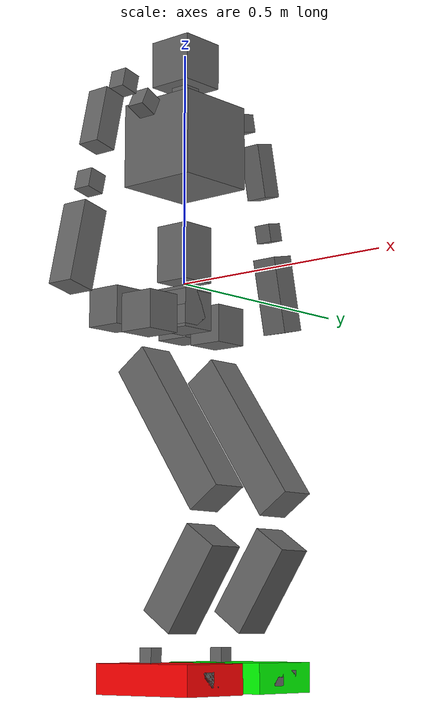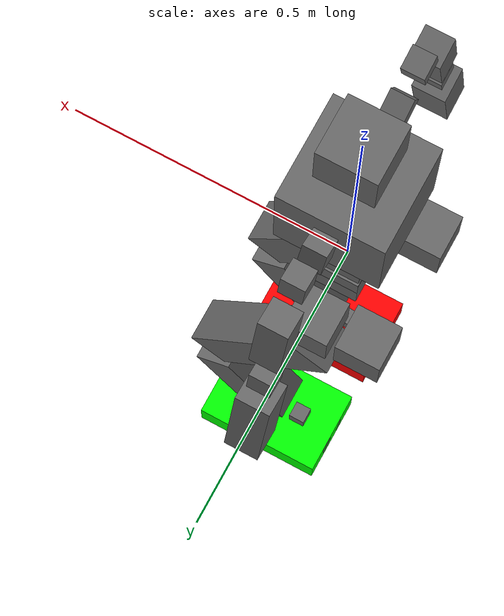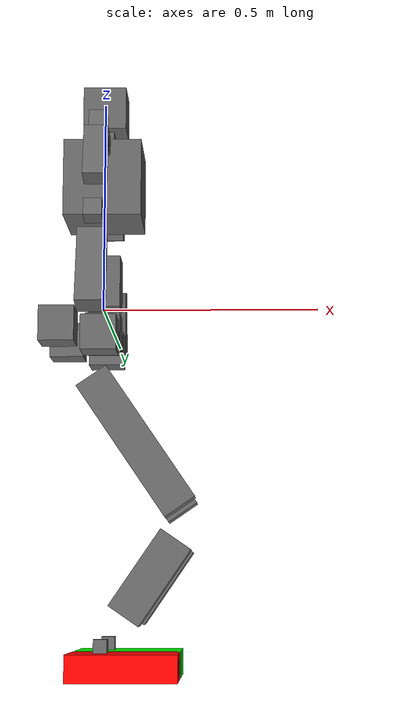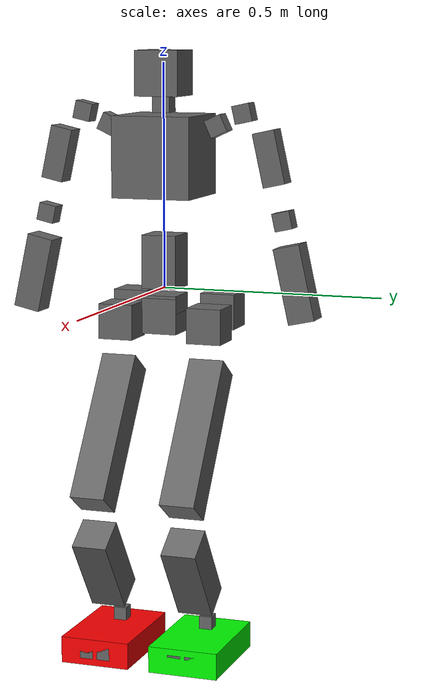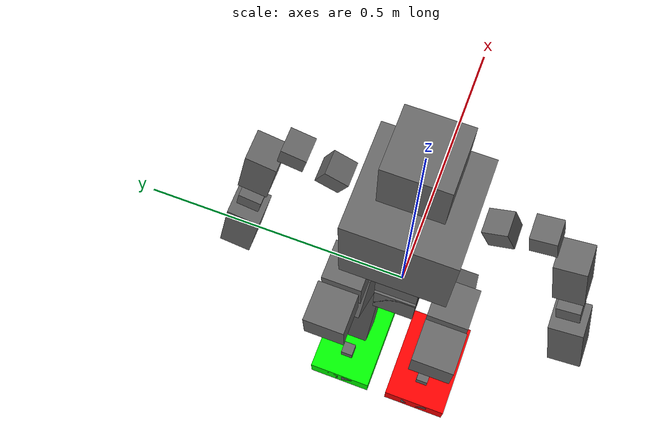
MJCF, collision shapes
<mujoco model="GR1T1">
    <compiler angle="radian" autolimits="true"/>
    <default>
    <motor ctrlrange="-1 1" ctrllimited="true"/>
        <default class="body">
            <geom type="box" condim="1" friction="1.0 0.05 0.05" solimp=".9 .99 .003" solref=".015 1"/>
            <joint type="hinge" armature=".007" limited="true" solimplimit="0 .99 .01"/>
            <site size="10" group="3"/>
        </default>
  </default>
  <asset>
    <material name="LightGrey" specular="0.9" shininess="0.9" rgba="0.4 0.4 0.4 1.0"/>
    <material name="Purple" specular="0.9" shininess="0.9" rgba="0.58 0.42 0.58 1.0"/>
    <material name="Blue" specular="0.9" shininess="0.9" rgba="0. 0.49 0.651 0."/>
    <material name="Green" specular="0.9" shininess="0.9" rgba="0. 0.82 0.471 1.0"/>
    <material name="Black" specular="0.9" shininess="0.9" rgba="0.1 0.1 0.1 1.0"/>
    <texture type="skybox" builtin="gradient" rgb1=".3 .5 .7" rgb2="0 0 0" width="32" height="512"/>
    <texture name="body" type="cube" builtin="flat" mark="cross" width="128" height="128" rgb1="0.8 0.6 0.4" rgb2="0.8 0.6 0.4" markrgb="1 1 1" random="0.01"/>
    <material name="body" texture="body" texuniform="true" rgba="0.8 0.6 .4 1"/>
    <texture name="grid" type="2d" builtin="checker" width="512" height="512" rgb1=".1 .2 .3" rgb2=".2 .3 .4"/>
    <material name="grid" texture="grid" texrepeat="1 1" texuniform="true" reflectance="0.02"/>

    <!-- Define mesh model files -->
    <mesh name="base" file="./meshes/base.STL"/>
    <mesh name="frame" file="./meshes/frame.obj" scale="0.001 0.001 0.001"/>
    <mesh name="frame_new" file="./meshes/frame_new.obj" scale="0.001 0.001 0.001"/>
    <mesh name="spear" file="./meshes/spear.obj" scale="0.03 0.0033 0.03"/>
    <mesh name="l_thigh_roll" file="./meshes/l_thigh_roll.STL"/>
    <mesh name="l_thigh_yaw" file="./meshes/l_thigh_yaw.STL"/>
    <mesh name="l_thigh_pitch" file="./meshes/l_thigh_pitch.STL"/>
    <mesh name="l_shank_pitch" file="./meshes/l_shank_pitch.STL"/>
    <mesh name="l_foot_pitch" file="./meshes/l_foot_pitch.STL"/>
    <mesh name="l_foot_roll" file="./meshes/l_foot_roll.STL"/>
    <mesh name="r_thigh_roll" file="./meshes/r_thigh_roll.STL"/>
    <mesh name="r_thigh_yaw" file="./meshes/r_thigh_yaw.STL"/>
    <mesh name="r_thigh_pitch" file="./meshes/r_thigh_pitch.STL"/>
    <mesh name="r_shank_pitch" file="./meshes/r_shank_pitch.STL"/>
    <mesh name="r_foot_pitch" file="./meshes/r_foot_pitch.STL"/>
    <mesh name="r_foot_roll" file="./meshes/r_foot_roll.STL"/>
    <mesh name="torso_waist_yaw" file="./meshes/waist_yaw.STL"/>
    <mesh name="torso_waist_pitch" file="./meshes/waist_pitch.STL"/>
    <mesh name="torso_waist_roll" file="./meshes/torso.STL"/>
    <mesh name="head_yaw" file="./meshes/head_yaw.STL"/>
    <mesh name="head_roll" file="./meshes/head_roll.STL"/>
    <mesh name="head_pitch" file="./meshes/head_pitch.STL"/>
    <mesh name="l_upper_arm_pitch" file="./meshes/l_upper_arm_pitch.STL"/>
    <mesh name="l_upper_arm_roll" file="./meshes/l_upper_arm_roll.STL"/>
    <mesh name="l_upper_arm_yaw" file="./meshes/l_upper_arm_yaw.STL"/>
    <mesh name="l_lower_arm_pitch" file="./meshes/l_lower_arm_pitch.STL"/>
    <mesh name="l_hand_yaw" file="./meshes/l_hand_yaw.STL"/>
    <mesh name="l_hand_roll" file="./meshes/l_hand_roll.STL"/>
    <mesh name="l_hand_pitch" file="./meshes/l_hand_pitch.STL"/>
    <mesh name="r_upper_arm_pitch" file="./meshes/r_upper_arm_pitch.STL"/>
    <mesh name="r_upper_arm_roll" file="./meshes/r_upper_arm_roll.STL"/>
    <mesh name="r_upper_arm_yaw" file="./meshes/r_upper_arm_yaw.STL"/>
    <mesh name="r_lower_arm_pitch" file="./meshes/r_lower_arm_pitch.STL"/>
    <mesh name="r_hand_yaw" file="./meshes/r_hand_yaw.STL"/>
    <mesh name="r_hand_roll" file="./meshes/r_hand_roll.STL"/>
    <mesh name="r_hand_pitch" file="./meshes/r_hand_pitch.STL"/>
    <!-- End of mesh model files -->
  </asset>
  <worldbody>
        <!-- Camera for observing hands-->
    <!-- Base -->
    <body name="base">
        <inertial pos="-0.0508888 0.000109183 -0.0455794" quat="0.706855 0.707166 0.0123661 -0.0109307" mass="6.45117" diaginertia="0.0149302 0.0127972 0.00640923"/>
        <!-- Base mesh -->
        <freejoint/>
        <!-- Torso center of mass -->

        <body name="whole_body">
            <geom type="mesh" contype="0" conaffinity="0" group="1" density="0" material="Purple" mesh="base"/>
            <geom size="0.04 0.04 0.04" pos="0 0 -0.06" type="box" material="LightGrey"/>

            <!-- Torso -->
            <!-- Waist yaw -->
            <body name="torso_waist_yaw" pos="0 0 0.0065">
                <site name="waist" pos="0 0 0" size="0.06 0.06 0.06" rgba="1 0 0 0" type="sphere" group="1"/>
                <inertial pos="-0.010388 -0.00169636 0.0224709" quat="8.03475e-05 0.752953 -6.91813e-06 0.658075" mass="0.37886" diaginertia="0.000387148 0.000354992 0.000193448"/>
                <joint name="torso_waist_yaw" pos="0 0 0" damping="50.4164" stiffness="453.15" axis="-1.221e-05 -6.8349e-05 1" range="-1.05 1.05"/>

                <geom type="mesh" contype="0" conaffinity="0" group="1" density="0" material="LightGrey" mesh="torso_waist_yaw"/>
                <geom size="0.04 0.04 0.04" pos="0 0 -0.06" quat="0.707388 0.706825 0 0" type="box" material="LightGrey"/>

                <!-- Waist pitch -->
                <body name="torso_waist_pitch" pos="0 0 0.055">
                    <inertial pos="0.00229173 -0.00229364 0.0425378" quat="0.998452 -0.0194486 0.0162447 0.0495079" mass="4.40328" diaginertia="0.00487449 0.00487146 0.00355351"/>
                    <joint name="torso_waist_pitch" pos="0 0 0" damping="50.4164" stiffness="453.15" axis="0 1 -6.8349e-05" range="-0.52 1.22"/>

                    <geom type="mesh" contype="0" conaffinity="0" group="1" density="0" material="LightGrey" mesh="torso_waist_pitch"/>
                    <geom size="0.04 0.04 0.06" type="box" material="LightGrey"/>

                    <!-- Waist roll -->
                    <body name="torso_waist_roll" pos="0 0 0.085">
                        <site name="chest" pos="0 0 0.2" size="0.06 0.06 0.06" rgba="1 0 0 0" type="sphere" group="1"/>
                        <inertial pos="-0.00982804 -1.2954e-05 0.160653" quat="0.999997 1.84368e-05 -0.00260593 -4.00255e-05" mass="7.34393" diaginertia="0.0305266 0.0217567 0.0136783"/>
                        <joint name="torso_waist_roll" pos="0 0 0" damping="50.4164" stiffness="453.15" axis="1 0 1.221e-05" range="-0.7 0.7"/>

                        <geom pos="0 0 0.15" type="mesh" contype="0" conaffinity="0" group="1" density="0" material="LightGrey" mesh="torso_waist_roll"/>
                        <geom size="0.09 0.09 0.09" pos="0 0 0.15" type="box" material="LightGrey"/>

                        <!-- Head yaw -->
                        <body name="head_yaw" pos="0.001 -0.00022551 0.295">
                            <site name="neck" pos="0 0 0" size="0.03 0.03 0.03" rgba="1 0 0 0" type="sphere" group="1"/>
                            <inertial pos="0.000255273 -1.43143e-05 0.0571737" quat="0.698659 0.111628 0.112302 0.697713" mass="0.168425" diaginertia="0.00013241 0.000126266 6.86988e-05"/>
                            <joint name="head_yaw" pos="0 0 0" axis="-1.221e-05 -6.8349e-05 1" range="-1.5707963267948966 1.5707963267948966" damping="7" armature="1.0" frictionloss="0.2"/>

                            <geom type="mesh" contype="0" conaffinity="0" group="1" density="0" material="LightGrey" mesh="head_yaw"/>
                            <geom size="0.02 0.02 0.02" pos="0 0 -0.03" type="box" material="LightGrey"/>

                            <!-- Head roll -->
                            <body name="head_roll" pos="0 0 0">
                                <inertial pos="-0.000539717 0.00299723 -0.00194711" quat="0.498775 0.509039 0.50481 0.487104" mass="0.0189574" diaginertia="5.66154e-06 3.71917e-06 3.07146e-06"/>
                                <joint name="head_roll" pos="0 0 0" axis="1 0 1.221e-05" range="-0.2617993877991494 0.2617993877991494" damping="7" armature="1.0" frictionloss="0.2"/>

                                <geom type="mesh" contype="0" conaffinity="0" group="1" density="0" material="LightGrey" mesh="head_roll"/>
                                <geom size="0.02 0.02 0.02" pos="0 0 -0.1" type="box" material="LightGrey"/>

                                <!-- Head pitch -->
                                <body name="head_pitch" pos="0 5.373E-05 0.036">
                                    <site name="head" pos="0 0 0" size="0.06 0.06 0.06" rgba="1 0 0 0" type="sphere" group="1"/>
                                    <inertial pos="0.0179937 0.000157203 -0.0107884" quat="-0.00317787 0.890883 0.0047882 0.454197" mass="0.315067" diaginertia="0.00129389 0.00105273 0.000852366"/>
                                    <joint name="head_pitch" pos="0 0 0" axis="0 1 6.8349e-05" range="-0.34906585 0.34906585"/>

                                    <geom type="mesh" contype="0" conaffinity="0" group="1" density="0" mass="0.1" material="Black" mesh="head_pitch"/>
                                    <geom size="0.05 0.05 0.05" type="box" material="LightGrey"/>
                                    <camera mode="fixed"
                                            name="robotview"
                                            pos="0.10742 0.0125 0.09"
                                            quat="0.5 0.5 -0.5 -0.5"
                                            resolution="1280 720" focal="909.83630 909.12280" sensorsize="1303.9403 752.74194"
                                    />

                                </body>
                                <!-- End of Head pitch -->
                            </body>
                            <!-- End of Head roll -->
                        </body>
                        <!-- End of Head yaw -->

                        <!-- Right arm -->
                        <body name="right_arm_mount" pos="0 -0.12664 0.21725" quat="0.976303 -0.216409 0 0">
                        <site name="right_center" pos="0 0 0" size="0.01" rgba="1 0.3 0.3 1" group="2"/>
                        <!-- r upper arm pitch -->
                        <body name="r_upper_arm_pitch">
                            <site name="r_shoulder_site" pos="0 0 0" size="0.03 0.03 0.03" rgba="1 0 0 0" type="sphere" group="1"/>
                            <inertial pos="0.00515735 -0.0587916 0.000122944" quat="0.999675 -0.0254775 -0.000125407 -0.000494276" mass="0.777391" diaginertia="0.00054641 0.000340601 0.00031934"/>
                            <joint name="r_shoulder_pitch" pos="0 0 0" axis="0 1 0" range="-2.6179938779914944 1.0471975511965976" damping="7.7" armature="3.0" frictionloss="0.2"/>

                            <geom type="mesh" contype="0" conaffinity="0" group="1" density="0" material="LightGrey" mesh="r_upper_arm_pitch"/>
                            <geom size="0.02 0.02 0.02" type="box" material="LightGrey"/>

                            <!-- r upper arm roll -->
                            <body name="r_upper_arm_roll" pos="0 -0.067 0" quat="0.9940525 0.1089021 0 0">
                                <inertial pos="0.0260059 -0.0238264 -0.0272109" quat="0.906733 -0.298529 0.228698 0.190821" mass="0.0840989" diaginertia="9.66585e-05 8.99068e-05 2.54689e-05"/>
                                <joint name="r_shoulder_roll" pos="0 0 0" axis="-1 0 1.221e-05" range="-0.2094395 2.399827721492203" damping="7.7" armature="3.0" frictionloss="0.2"/>

                                <geom type="mesh" contype="0" conaffinity="0" group="1" density="0" material="LightGrey" mesh="r_upper_arm_roll"/>
                                <geom size="0.02 0.02 0.02" type="box" material="LightGrey"/>

                                <!-- r upper arm yaw -->
                                <body name="r_upper_arm_yaw" pos="0 -0.039996 -0.057473">
                                    <site name="r_collar_site" pos="0 0 0" size="0.03 0.03 0.03" rgba="1 0 0 0" type="sphere" group="1"/>
                                    <inertial pos="0.00017083 -0.00124148 -0.100981" quat="0.712176 -0.02561 0.0250075 0.701088" mass="0.78993" diaginertia="0.000481112 0.000420147 0.000315576"/>
                                    <joint name="r_shoulder_yaw" pos="0 0 0" axis="1.221e-05 6.8349e-05 1" range="-1.5707963267948966 1.5707963267948966" damping="7.7" armature="1.0" frictionloss="0.2"/>

                                    <geom type="mesh" contype="0" conaffinity="0" group="1" density="0" material="LightGrey" mesh="r_upper_arm_yaw"/>
                                    <geom size="0.025 0.025 0.06" pos="0 0 -0.05" type="box" material="LightGrey"/>

                                    <!-- r lower arm pitch -->
                                    <body name="r_lower_arm_pitch" pos="0 1.28859e-05 -0.18853">
                                        <site name="r_elbow_site" pos="0 0 0" size="0.03 0.03 0.03" rgba="1 0 0 0" type="sphere" group="1"/>
                                        <inertial pos="2.54538e-07 -0.0196908 -0.0210929" quat="0.675237 0.209883 -0.209892 0.67524" mass="0.0553958" diaginertia="2.92256e-05 2.63267e-05 1.3293e-05"/>
                                        <joint name="r_elbow_pitch" pos="0 0 0" axis="0 1 -6.835e-05" range="-1.5707963267948966 0.0" damping="7.7" armature="3.0" frictionloss="0.2"/>

                                        <geom type="mesh" contype="0" conaffinity="0" group="1" density="0" material="LightGrey" mesh="r_lower_arm_pitch"/>
                                        <geom size="0.02 0.02 0.02" type="box" material="LightGrey"/>

                                        <!-- r hand yaw -->
                                        <body name="r_hand_yaw" pos="0 0 -0.0405">
                                            <inertial pos="0.000158044 -0.000478822 -0.0559415" quat="0.999772 0.019131 0.00724385 -0.00608553" mass="0.606076" diaginertia="0.000748132 0.000708413 0.000280748"/>
                                            <joint name="r_wrist_yaw" pos="0 0 0" axis="1.221e-05 6.835e-05 1" range="-1.5707963267948966 1.5707963267948966" damping="7.7" armature="1.0" frictionloss="0.2"/>

                                            <geom type="mesh" contype="0" conaffinity="0" group="1" density="0" material="LightGrey" mesh="r_hand_yaw"/>
                                            <geom size="0.03 0.03 0.085" pos="0 0 -0.1" type="box" material="LightGrey"/>

                                            <!-- r hand roll -->
                                            <body name="r_hand_roll" pos="0 1.3775e-05 -0.20153">
                                                <inertial pos="1.5545e-08 0.00044846 4.1938e-08" quat="0 0.707105 0 0.707108" mass="0.0054473" diaginertia="3.6036e-07 3.5527e-07 7.344e-08"/>
                                                <joint name="r_wrist_roll" pos="0 0 0" axis="1 0 1.221e-05" range="-0.3665191429188092 0.3665191429188092" damping="7.7" armature="1.0" frictionloss="0.2"/>

                                                <geom type="mesh" contype="0" conaffinity="0" group="1" density="0" material="LightGrey" mesh="r_hand_roll"/>

                                                <!-- r hand pitch -->
                                                <body name="r_hand_pitch" quat="0.5 0.5 -0.5 -0.5">
                                                    <site name="r_wrist_site" pos="0 0 0" size="0.03 0.03 0.03" rgba="1 0 0 0" type="sphere" group="1"/>
                                                    <inertial pos="0.0060733 0.0018907 -0.084578" quat="0.647336 -0.27161 -0.257721 0.6639" mass="0.53221" diaginertia="0.000319947 0.000196296 0.000182477"/>
                                                    <joint name="r_wrist_pitch" pos="0 0 0" axis="1 0 0" range="-0.3665191429188092 0.3665191429188092" damping="7.7" armature="1.0" frictionloss="0.2"/>

                                                    <!-- right eef -->
                                                    <body name="right_eef" pos="0 0 0" quat="0.7071068 -0.7071068 0 0">
                                                        <body name="right_mount" quat="0 0 1 0"/>
                                                        <body name="right_hand_eef" pos="0 0 0"/>
                                                    </body>
                                                    <!-- End of right eef -->

                                                    <body name="right_palm" pos="-0.01 -0.12 -0.02">
                                                    </body>
                                                </body>
                                                <!-- End of r hand pitch -->
                                            </body>
                                            <!-- End of r hand roll -->
                                        </body>
                                        <!-- End of r hand yaw -->
                                    </body>
                                    <!-- End of r lower arm pitch -->
                                </body>
                                <!-- End of r upper arm yaw -->
                            </body>
                            <!-- End of r upper arm roll -->
                        </body>
                        <!-- End of r upper arm pitch -->
                        </body>
                        <!-- End of right arm mount -->
                        <!-- End of Right arm -->

                        <!-- Left arm -->
                        <body name="left_arm_mount" pos="0 0.12661 0.21727" quat="0.976289 0.216473 0 0">
                        <site name="left_center" pos="0 0 0" size="0.01" rgba="1 0.3 0.3 1" group="2"/>
                        <!-- l upper arm pitch -->
                        <body name="l_upper_arm_pitch">
                            <site name="l_shoulder_site" pos="0 0 0" size="0.03 0.03 0.03" rgba="1 0 0 0" type="sphere" group="1"/>
                            <inertial pos="0.00515733 0.0588337 0.000122944" quat="0.999793 0.0203364 -0.000117253 0.0011083" mass="0.777394" diaginertia="0.000546411 0.000340581 0.000319359"/>
                            <joint name="l_shoulder_pitch" pos="0 0 0" axis="0 -1 0" range="-1.0471975511965976 2.6179938779914944" damping="7.7" armature="3.0" frictionloss="0.2"/>
                            <geom type="mesh" contype="0" conaffinity="0" group="1" density="0" material="LightGrey" mesh="l_upper_arm_pitch"/>
                            <geom size="0.02 0.02 0.02" type="box" material="LightGrey"/>

                            <!-- l upper arm roll -->
                            <body name="l_upper_arm_roll" pos="0 0.067 0" quat="0.9940525 -0.1089021 0 0">
                                <inertial pos="0.0260055 0.0238305 -0.0272078" quat="0.906707 0.298574 0.228734 -0.190834" mass="0.084111" diaginertia="9.66711e-05 8.99184e-05 2.54726e-05"/>
                                <joint name="l_shoulder_roll" pos="0 0 0" axis="-1 0 1.221e-05" range="-2.399827721492203 0.2094395" damping="7.7" armature="3.0" frictionloss="0.2"/>
                                <geom type="mesh" contype="0" conaffinity="0" group="1" density="0" material="LightGrey" mesh="l_upper_arm_roll"/>
                                <geom size="0.02 0.02 0.02" type="box" material="LightGrey"/>

                                <!-- l upper arm yaw -->
                                <body name="l_upper_arm_yaw" pos="0 0.040004 -0.057502">
                                    <site name="l_collar_site" pos="0 0 0" size="0.03 0.03 0.03" rgba="1 0 0 0" type="sphere" group="1"/>
                                    <inertial pos="-4.12427e-05 0.00135031 -0.101007" quat="0.706543 0.0248514 -0.0268343 0.706724" mass="0.78993" diaginertia="0.000480863 0.000420363 0.000315608"/>
                                    <joint name="l_shoulder_yaw" pos="0 0 0" axis="1.221e-05 6.8349e-05 1" range="-1.5707963267948966 1.5707963267948966" damping="7.7" armature="1.0" frictionloss="0.2"/>
                                    <geom type="mesh" contype="0" conaffinity="0" group="1" density="0" material="LightGrey" mesh="l_upper_arm_yaw"/>
                                    <geom size="0.025 0.025 0.06" pos="0 0 -0.05" type="box" material="LightGrey"/>

                                    <!-- l lower arm pitch -->
                                    <body name="l_lower_arm_pitch" pos="0 1.28869e-05 -0.188546">
                                        <site name="l_elbow_site" pos="0 0 0" size="0.03 0.03 0.03" rgba="1 0 0 0" type="sphere" group="1"/>
                                        <inertial pos="2.60519e-07 0.0196937 -0.0210902" quat="0.675254 -0.209845 0.209837 0.675252" mass="0.0553958" diaginertia="2.92256e-05 2.63267e-05 1.3293e-05"/>
                                        <joint name="l_elbow_pitch" pos="0 0 0" axis="0 -1 -6.83491e-05" range="0.0 1.5707963267948966" damping="7.7" armature="3.0" frictionloss="0.2"/>
                                        <geom type="mesh" contype="0" conaffinity="0" group="1" density="0" material="LightGrey" mesh="l_lower_arm_pitch"/>
                                        <geom size="0.02 0.02 0.02" type="box" material="LightGrey"/>

                                        <!-- l hand yaw -->
                                        <body name="l_hand_yaw" pos="0 0 -0.0405043">
                                            <inertial pos="-4.20996e-05 0.000336116 -0.0559829" quat="0.999784 -0.0189715 -0.00676208 0.00509819" mass="0.606076" diaginertia="0.000747266 0.000709257 0.000280769"/>
                                            <joint name="l_wrist_yaw" pos="0 0 0" axis="1.221e-05 6.83491e-05 1" range="-1.5707963267948966 1.5707963267948966" damping="7.7" armature="1.0" frictionloss="0.2"/>
                                            <geom type="mesh" contype="0" conaffinity="0" group="1" density="0" material="LightGrey" mesh="l_hand_yaw"/>
                                            <geom size="0.03 0.03 0.085" pos="0 0 -0.1" type="box" material="LightGrey"/>

                                            <!-- l hand roll -->
                                            <body name="l_hand_roll" pos="0 1.3775e-05 -0.20155">
                                                <inertial pos="-1.5483e-08 -0.00044846 -1.9394e-08" quat="0 0.7071 0 0.707114" mass="0.0054473" diaginertia="3.6036e-07 3.5527e-07 7.344e-08"/>
                                                <joint name="l_wrist_roll" pos="0 0 0" axis="-1 0 1.2211e-05" range="-0.3665191429188092 0.3665191429188092" damping="7.7" armature="1.0" frictionloss="0.2"/>
                                                <geom type="mesh" contype="0" conaffinity="0" group="1" density="0" material="LightGrey" mesh="l_hand_roll"/>

                                                <!-- l hand pitch -->
                                                <body name="l_hand_pitch" quat="0.5 0.5 0.5 0.5">
                                                    <site name="l_wrist_site" pos="0 0 0" size="0.03 0.03 0.03" rgba="1 0 0 0" type="sphere" group="1"/>
                                                    <inertial pos="0.0071289 -0.0026192 -0.078567" quat="0.298548 0.646339 0.631172 0.307795" mass="0.5239" diaginertia="0.000345825 0.000211684 0.000195941"/>
                                                    <joint name="l_wrist_pitch" pos="0 0 0" axis="1 0 0" range="-0.3665191429188092 0.3665191429188092" damping="7.7" armature="1.0" frictionloss="0.2"/>

                                                    <!-- left eef -->
                                                    <body name="left_eef" pos="0 0 0" quat="0.7071068 -0.7071068 0 0">
                                                        <body name="left_mount" quat="0 0 1 0"/>
                                                        <body name="left_hand_eef" pos="0 0 0"/>
                                                    </body>
                                                    <!-- End of left eef -->

                                                    <body name="left_palm" pos="-0.01 -0.12 0.02">
                                                    </body>
                                                </body>
                                                <!-- End of l hand pitch -->
                                            </body>
                                            <!-- End of l hand roll -->
                                        </body>
                                        <!-- End of l hand yaw -->
                                    </body>
                                    <!-- End of l lower arm pitch -->
                                </body>
                                <!-- End of l upper arm yaw -->
                            </body>
                            <!-- End of l upper arm roll -->
                        </body>
                        <!-- End of l upper arm pitch -->
                        </body>
                        <!-- End of left arm mount -->
                        <!-- End of Left arm -->

                    </body>
                    <!-- End of Waist roll -->
                </body>
                <!-- End of Waist pitch -->
            </body>
            <!-- End of Waist yaw -->
            <!-- End of Torso -->

        <!-- Frame -->
            <geom type="mesh" contype="0" conaffinity="0" group="1" density="0.1" material="Blue" mesh="frame_new"
            pos="0.38 -0.34 -0.825" quat="0 0 0.7071068 0.7071068"/>

            <body name="lower_body">
                <!-- Left leg -->
                <!-- l thigh roll -->
                <body name="l_thigh_roll" pos="-0.047999 0.105 -0.057493">
                    <inertial pos="0.04163 3.4568e-05 -0.0021382" quat="0.575529 0.581908 -0.40597 0.406619" mass="1.1437" diaginertia="0.00117548 0.00100413 0.000943892"/>
                    <joint name="l_leg_hip_roll" pos="0 0 0" axis="1 0 1.221e-05" range="-0.09 0.79"/>
                    <geom type="mesh" contype="0" conaffinity="0" group="1" density="0" material="LightGrey" mesh="l_thigh_roll"/>
                    <geom size="0.04 0.04 0.04" pos="-0.046 0 0" type="box" material="LightGrey"/>

                    <!-- l thigh yaw -->
                    <body name="l_thigh_yaw" pos="0.048 0 -0.030499">
                        <inertial pos="0.00018348 0.046462 -0.10389" quat="0.704251 -0.0226446 -0.0453749 0.708138" mass="3.9888" diaginertia="0.0163385 0.0100158 0.00924336"/>
                        <joint name="l_leg_hip_yaw" pos="0 0 0" axis="1.2209e-05 6.8349e-05 1" range="-0.7 0.7"/>
                        <geom type="mesh" contype="0" conaffinity="0" group="1" density="0" material="LightGrey" mesh="l_thigh_yaw"/>
                        <geom size="0.04 0.04 0.04" pos="0 0 0.01" type="box" material="LightGrey"/>

                        <!-- l thigh pitch -->
                        <body name="l_thigh_pitch" pos="0 0 -0.11" quat="0.9553365 0 -0.2955202 0">
                            <inertial pos="0.0028493 -0.021688 -0.090886" quat="0.707411 -0.0125435 -0.0111264 0.706604" mass="6.369" diaginertia="0.0532352 0.0425096 0.0134363"/>
                            <joint name="l_leg_hip_pitch" pos="0 0 0" axis="0 1 -6.8349e-05" range="-1.75 0.7"/>
                            <geom type="mesh" contype="0" conaffinity="0" group="1" density="0" material="LightGrey" mesh="l_thigh_pitch"/>
                            <geom size="0.04 0.04 0.175" pos="0 0 -0.15" type="box" material="LightGrey"/>

                            <!-- l shank pitch -->
                            <body name="l_shank_pitch" pos="0 2.4606e-05 -0.36" quat="0.8253356 0 0.5646425 0">
                                <inertial pos="0.0024312 -2.9945e-05 -0.11554" quat="0.692137 0.00134576 0.00140217 0.721764" mass="2.1895" diaginertia="0.0162703 0.016117 0.00113627"/>
                                <joint name="l_leg_knee_pitch" pos="0 0 0" axis="0 1 6.8349e-05" range="-0.09 1.92"/>
                                <geom type="mesh" contype="0" conaffinity="0" group="1" density="0" material="LightGrey" mesh="l_shank_pitch"/>
                                <geom size="0.04 0.04 0.1" pos="0 0 -0.15" type="box" material="LightGrey"/>

                                <!-- l foot pitch -->
                                <body name="l_foot_pitch" pos="0 2.3239e-05 -0.34" quat="0.9553365 0 -0.2955202 0">
                                    <inertial pos="1.748e-11 4.3804e-11 0" quat="1 3.42295e-05 -6.07362e-06 -2.07897e-10" mass="0.080335" diaginertia="5.1022e-06 4.3976e-06 4.188e-06"/>
                                    <joint name="l_leg_ankle_pitch" pos="0 0 0" axis="0 1 6.8349e-05" range="-1.05 0.52"/>
                                    <geom type="mesh" contype="0" conaffinity="0" group="1" density="0" material="LightGrey" mesh="l_foot_pitch"/>
                                    <geom size="0.015 0.015 0.015" pos="0 0 0.01" type="box" material="LightGrey"/>

                                    <!-- l foot roll -->
                                    <body name="l_foot_roll">
                                        <inertial pos="0.039446 0.00035757 -0.038101" quat="-0.00087198 0.709539 -0.00177594 0.704664" mass="0.584" diaginertia="0.00271032 0.0024027 0.000369145"/>
                                        <joint name="l_leg_ankle_roll" pos="0 0 0" axis="1 0 1.221e-05" range="-0.44 0.44"/>
                                        <geom type="mesh" contype="0" conaffinity="0" group="1" density="0" material="Black" mesh="l_foot_roll"/>
                                        <geom name="l_foot_1" size="0.015 0.015 0.12" pos="0.05 0.02 -0.035" quat="0.707105 0 0.707108 0" type="box" material="LightGrey"/>
                                        <geom name="l_foot_2" size="0.015 0.015 0.12" pos="0.05 -0.02 -0.035" quat="0.707105 0 0.707108 0" type="box" material="LightGrey"/>
                                        <geom name="geom_left_A1_col" size="0.03 .08 0.12" pos="0.05 0 -0.035" quat="0.707105 0 0.707108 0" type="box" rgba="0 1 0 1"/>

                                        <body name="left_foot" pos="0 0 -0.076" quat="1 0 0 0"/>
                                    </body>
                                    <!-- End of l foot roll -->
                                </body>
                                <!-- End of l foot pitch -->
                            </body>
                            <!-- End of l shank pitch -->
                        </body>
                        <!-- End of l thigh pitch -->
                    </body>
                    <!-- End of l thigh yaw -->
                </body>
                <!-- End of l thigh roll -->
                <!-- End of Left leg -->

                <!-- Right leg -->
                <!-- r thigh roll -->
                <body name="r_thigh_roll" pos="-0.047999 -0.105 -0.057508">
                    <inertial pos="0.0416295 3.45678e-05 -0.00213824" quat="0.57555 0.581927 -0.405942 0.406589" mass="1.14367" diaginertia="0.00117548 0.00100417 0.000943891"/>
                    <joint name="r_leg_hip_roll" pos="0 0 0" axis="1 0 1.221e-05" range="-0.79 0.09"/>
                    <geom type="mesh" contype="0" conaffinity="0" group="1" density="0" material="LightGrey" mesh="r_thigh_roll"/>
                    <geom size="0.04 0.04 0.04" pos="-0.046 0 0" type="box" material="LightGrey"/>

                    <!-- r thigh yaw -->
                    <body name="r_thigh_yaw" pos="0.048 0 -0.030499">
                        <inertial pos="-0.00159762 -0.0464482 -0.103899" quat="0.709186 -0.0420808 -0.0194028 0.703497" mass="3.98882" diaginertia="0.0163388 0.0100142 0.00924469"/>
                        <joint name="r_leg_hip_yaw" pos="0 0 0" axis="1.2209e-05 6.8349e-05 1" range="-0.7 0.7"/>
                        <geom type="mesh" contype="0" conaffinity="0" group="1" density="0" material="LightGrey" mesh="r_thigh_yaw"/>
                        <geom size="0.04 0.04 0.04" pos="0 0 0.01" type="box" material="LightGrey"/>

                        <!-- r thigh pitch -->
                        <body name="r_thigh_pitch" pos="0 0 -0.11" quat="0.9553365 0 -0.2955202 0">
                            <inertial pos="0.002842 0.0217009 -0.0919987" quat="0.706586 -0.0113774 -0.0126258 0.707423" mass="6.36895" diaginertia="0.0532349 0.0424818 0.0134641"/>
                            <joint name="r_leg_hip_pitch" pos="0 0 0" axis="0 1 6.8349e-05" range="-1.75 0.7"/>
                            <geom type="mesh" contype="0" conaffinity="0" group="1" density="0" material="LightGrey" mesh="r_thigh_pitch"/>
                            <geom size="0.04 0.04 0.175" pos="0 0 -0.15" type="box" material="LightGrey"/>

                            <!-- r shank pitch -->
                            <body name="r_shank_pitch" pos="0 2.4606e-05 -0.36" quat="0.8253356 0 0.5646425 0">
                                <inertial pos="0.00236658 4.56188e-05 -0.115532" quat="0.71872 0.00154106 0.00120241 0.695296" mass="2.18947" diaginertia="0.0162708 0.0161183 0.00113536"/>
                                <joint name="r_leg_knee_pitch" pos="0 0 0" axis="0 1 -6.8349e-05" range="-0.09 1.92"/>
                                <geom type="mesh" contype="0" conaffinity="0" group="1" density="0" material="LightGrey" mesh="r_shank_pitch"/>
                                <geom size="0.04 0.04 0.1" pos="0 0 -0.15" type="box" material="LightGrey"/>

                                <!-- r foot pitch -->
                                <body name="r_foot_pitch" pos="0 2.3239e-05 -0.34" quat="0.9553365 0 -0.2955202 0">
                                    <inertial pos="1.75705e-11 4.40342e-11 0" quat="1 3.42336e-05 -6.07409e-06 -2.07938e-10" mass="0.0799219" diaginertia="5.11122e-06 4.40004e-06 4.17954e-06"/>
                                    <joint name="r_leg_ankle_pitch" pos="0 0 0" axis="0 1 6.8349e-05" range="-1.05 0.52"/>
                                    <geom type="mesh" contype="0" conaffinity="0" group="1" density="0" material="LightGrey" mesh="r_foot_pitch"/>
                                    <geom size="0.015 0.015 0.015" pos="0 0 0.01" type="box" material="LightGrey"/>

                                    <!-- r foot roll -->
                                    <body name="r_foot_roll">
                                        <inertial pos="0.043909 -0.00032475 -0.039419" quat="0.000727105 0.710094 0.00155959 0.704104" mass="0.58089" diaginertia="0.00280098 0.0024886 0.000368482"/>
                                        <joint name="r_leg_ankle_roll" pos="0 0 0" axis="1 0 1.221e-05" range="-0.44 0.44"/>
                                        <geom type="mesh" contype="0" conaffinity="0" group="1" density="0" material="Black" mesh="r_foot_roll"/>
                                        <geom name="r_foot_1" size="0.015 0.015 0.12" pos="0.05 0.02 -0.035" quat="0.707105 0 0.707108 0" type="box" material="LightGrey"/>
                                        <geom name="r_foot_2" size="0.015 0.015 0.12" pos="0.05 -0.02 -0.035" quat="0.707105 0 0.707108 0" type="box" material="LightGrey"/>
                                        <geom name="geom_right_A1_col" size="0.03 .08 0.12" pos="0.05 0 -0.035" quat="0.707105 0 0.707108 0" type="box" rgba="1 0 0 1"/>

                                        <body name="right_foot" pos="0 0 -0.076" quat="1 0 0 0"/>
                                    </body>
                                    <!-- End of r foot roll -->
                                </body>
                                <!-- End of r foot pitch -->
                            </body>
                            <!-- End of r shank pitch -->
                        </body>
                        <!-- End of r thigh pitch -->
                    </body>
                    <!-- End of r thigh yaw -->
                </body>
                <!-- End of r thigh roll -->

                <!-- End of Right leg -->
            </body>
            <!-- End of lower body -->
        </body>
    </body>
    <!-- End of Base -->
  </worldbody>
  <actuator>

    <!-- Left leg motors -->
    <motor ctrllimited="true" ctrlrange="-20000 20000" joint="l_leg_hip_roll" name="l_leg_hip_roll"/>
    <motor ctrllimited="true" ctrlrange="-20000 20000" joint="l_leg_hip_yaw" name="l_leg_hip_yaw"/>
    <motor ctrllimited="true" ctrlrange="-20000 20000" joint="l_leg_hip_pitch" name="l_leg_hip_pitch"/>
    <motor ctrllimited="true" ctrlrange="-20000 20000" joint="l_leg_knee_pitch" name="l_leg_knee_pitch"/>
    <motor ctrllimited="true" ctrlrange="-20000 20000" joint="l_leg_ankle_pitch" name="l_leg_ankle_pitch"/>
    <motor ctrllimited="true" ctrlrange="-20000 20000" joint="l_leg_ankle_roll" name="l_leg_ankle_roll"/>
    <!-- End of Left leg motors -->

    <!-- Right leg motors -->
    <motor ctrllimited="true" ctrlrange="-20000 20000" joint="r_leg_hip_roll" name="r_leg_hip_roll"/>
    <motor ctrllimited="true" ctrlrange="-20000 20000" joint="r_leg_hip_yaw" name="r_leg_hip_yaw"/>
    <motor ctrllimited="true" ctrlrange="-20000 20000" joint="r_leg_hip_pitch" name="r_leg_hip_pitch"/>
    <motor ctrllimited="true" ctrlrange="-20000 20000" joint="r_leg_knee_pitch" name="r_leg_knee_pitch"/>
    <motor ctrllimited="true" ctrlrange="-20000 20000" joint="r_leg_ankle_pitch" name="r_leg_ankle_pitch"/>
    <motor ctrllimited="true" ctrlrange="-20000 20000" joint="r_leg_ankle_roll" name="r_leg_ankle_roll"/>
    <!-- End of Right leg motors -->

    <motor ctrllimited="true" ctrlrange="-20000 20000" joint="torso_waist_yaw" name="torso_waist_yaw"/>
    <motor ctrllimited="true" ctrlrange="-20000 20000" joint="torso_waist_pitch" name="torso_waist_pitch"/>
    <motor ctrllimited="true" ctrlrange="-20000 20000" joint="torso_waist_roll" name="torso_waist_roll"/>
    <motor ctrllimited="true" ctrlrange="-20000 20000" joint="head_yaw" name="head_yaw"/>
    <motor ctrllimited="true" ctrlrange="-20000 20000" joint="head_pitch" name="head_pitch"/>
    <motor ctrllimited="true" ctrlrange="-20000 20000" joint="head_roll" name="head_roll"/>

    <!-- Right arm motors -->
    <motor ctrllimited="true" ctrlrange="-20000 20000" joint="r_shoulder_pitch" name="r_shoulder_pitch"/>
    <motor ctrllimited="true" ctrlrange="-20000 20000" joint="r_shoulder_roll" name="r_shoulder_roll"/>
    <motor ctrllimited="true" ctrlrange="-20000 20000" joint="r_shoulder_yaw" name="r_shoulder_yaw"/>
    <motor ctrllimited="true" ctrlrange="-20000 20000" joint="r_elbow_pitch" name="r_elbow_pitch"/>
    <motor ctrllimited="true" ctrlrange="-20000 20000" joint="r_wrist_yaw" name="r_wrist_yaw"/>
    <motor ctrllimited="true" ctrlrange="-20000 20000" joint="r_wrist_roll" name="r_wrist_roll"/>
    <motor ctrllimited="true" ctrlrange="-20000 20000" joint="r_wrist_pitch" name="r_wrist_pitch"/>
    <!-- End of right arm motors -->

    <!-- Left arm motors -->
    <motor ctrllimited="true" ctrlrange="-20000 20000" joint="l_shoulder_pitch" name="l_shoulder_pitch"/>
    <motor ctrllimited="true" ctrlrange="-20000 20000" joint="l_shoulder_roll" name="l_shoulder_roll"/>
    <motor ctrllimited="true" ctrlrange="-20000 20000" joint="l_shoulder_yaw" name="l_shoulder_yaw"/>
    <motor ctrllimited="true" ctrlrange="-20000 20000" joint="l_elbow_pitch" name="l_elbow_pitch"/>
    <motor ctrllimited="true" ctrlrange="-20000 20000" joint="l_wrist_yaw" name="l_wrist_yaw"/>
    <motor ctrllimited="true" ctrlrange="-20000 20000" joint="l_wrist_roll" name="l_wrist_roll"/>
    <motor ctrllimited="true" ctrlrange="-20000 20000" joint="l_wrist_pitch" name="l_wrist_pitch"/>
    <!-- End of left arm motors -->

  </actuator>

  <contact>
    <exclude name="upper_lower_body" body1="torso_waist_yaw" body2="lower_body"/>
    <exclude name="torso_head_1" body1="torso_waist_roll" body2="head_yaw"/>
    <exclude name="torso_head_2" body1="torso_waist_roll" body2="head_roll"/>
    <exclude name="torso_head_3" body1="torso_waist_roll" body2="head_pitch"/>
    <exclude name="head_1" body1="head_roll" body2="head_yaw"/>
    <exclude name="head_2" body1="head_pitch" body2="head_yaw"/>

  </contact>
</mujoco>
